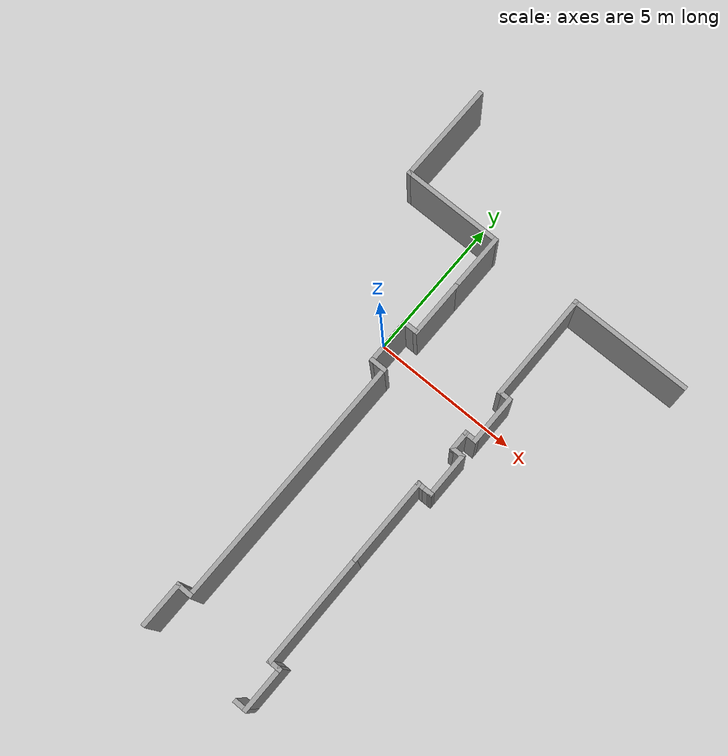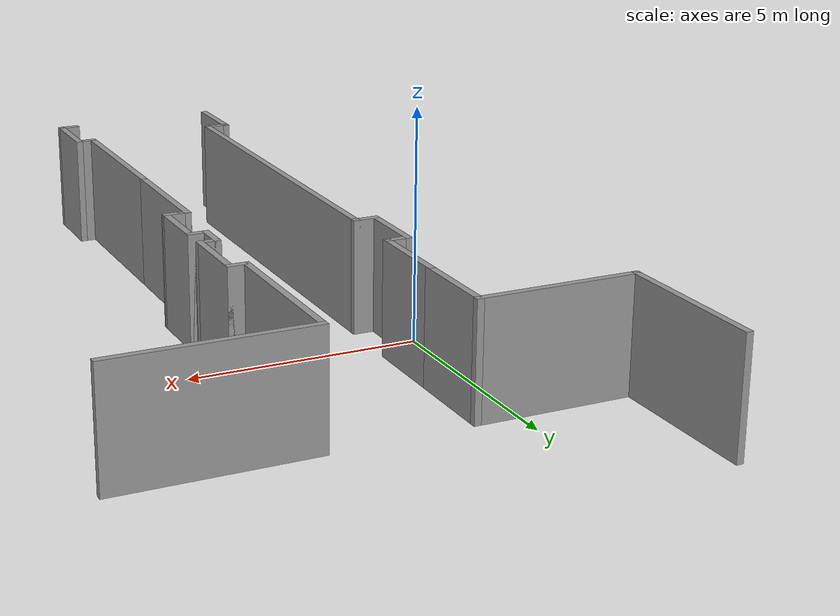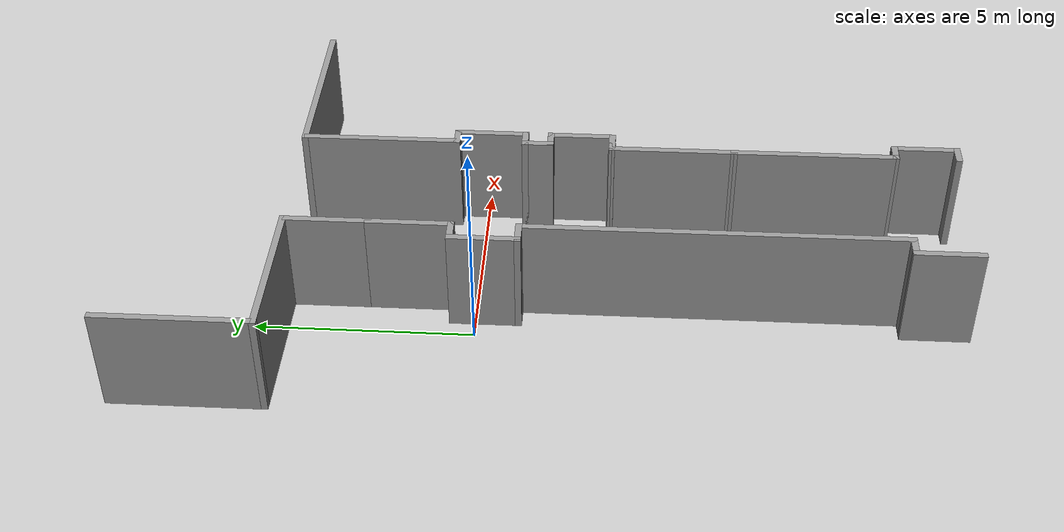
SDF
<sdf version="1.6">
 <model name="volen.world">
  <link name="Wall_126">
   <pose>6.03623 4.29936 0 0 -0 3.14159</pose>
   <visual name="Wall_126_Visual">
    <pose>0 0 1.25 0 -0 0</pose>
    <geometry><box><size>4.25 0.15 2.5</size></box></geometry>
    <material>
     <script><uri>file://media/materials/scripts/gazebo.material</uri><name>Gazebo/Grey</name></script>
     <ambient>1 1 1 1</ambient>
     <diffuse>0.7 0.7 0.7 1</diffuse>
     <specular>0.01 0.01 0.01 1</specular>
     <emissive>0 0 0 1</emissive>
    </material>
   </visual>
   <collision name="Wall_126_Collision">
    <pose>0 0 1.25 0 -0 0</pose>
    <geometry><box><size>4.25 0.15 2.5</size></box></geometry>
    <surface>
     <friction>
      <ode><mu>1</mu><mu2>1</mu2><fdir1>0 0 0</fdir1><slip1>0</slip1><slip2>0</slip2></ode>
      <torsional>
       <coefficient>1</coefficient>
       <patch_radius>0</patch_radius>
       <surface_radius>0</surface_radius>
       <use_patch_radius>1</use_patch_radius>
       <ode><slip>0</slip></ode>
      </torsional>
     </friction>
     <bounce><restitution_coefficient>0</restitution_coefficient><threshold>1e+06</threshold></bounce>
     <contact>
      <collide_without_contact>0</collide_without_contact>
      <collide_without_contact_bitmask>1</collide_without_contact_bitmask>
      <collide_bitmask>1</collide_bitmask>
      <ode>
       <soft_cfm>0</soft_cfm>
       <soft_erp>0.2</soft_erp>
       <kp>1e+13</kp>
       <kd>1</kd>
       <max_vel>0.01</max_vel>
       <min_depth>0</min_depth>
      </ode>
      <bullet>
       <split_impulse>1</split_impulse>
       <split_impulse_penetration_threshold>-0.01</split_impulse_penetration_threshold>
       <soft_cfm>0</soft_cfm>
       <soft_erp>0.2</soft_erp>
       <kp>1e+13</kp>
       <kd>1</kd>
      </bullet>
     </contact>
    </surface>
   </collision>
  </link>
  <link name="Wall_128">
   <pose>3.98623 2.49936 0 0 0 -1.5708</pose>
   <visual name="Wall_128_Visual">
    <pose>0 0 1.25 0 -0 0</pose>
    <geometry><box><size>3.75 0.15 2.5</size></box></geometry>
    <material>
     <script><uri>file://media/materials/scripts/gazebo.material</uri><name>Gazebo/Grey</name></script>
     <ambient>1 1 1 1</ambient>
     <diffuse>0.7 0.7 0.7 1</diffuse>
     <specular>0.01 0.01 0.01 1</specular>
     <emissive>0 0 0 1</emissive>
    </material>
   </visual>
   <collision name="Wall_128_Collision">
    <pose>0 0 1.25 0 -0 0</pose>
    <geometry><box><size>3.75 0.15 2.5</size></box></geometry>
    <surface>
     <friction>
      <ode><mu>1</mu><mu2>1</mu2><fdir1>0 0 0</fdir1><slip1>0</slip1><slip2>0</slip2></ode>
      <torsional>
       <coefficient>1</coefficient>
       <patch_radius>0</patch_radius>
       <surface_radius>0</surface_radius>
       <use_patch_radius>1</use_patch_radius>
       <ode><slip>0</slip></ode>
      </torsional>
     </friction>
     <bounce><restitution_coefficient>0</restitution_coefficient><threshold>1e+06</threshold></bounce>
     <contact>
      <collide_without_contact>0</collide_without_contact>
      <collide_without_contact_bitmask>1</collide_without_contact_bitmask>
      <collide_bitmask>1</collide_bitmask>
      <ode>
       <soft_cfm>0</soft_cfm>
       <soft_erp>0.2</soft_erp>
       <kp>1e+13</kp>
       <kd>1</kd>
       <max_vel>0.01</max_vel>
       <min_depth>0</min_depth>
      </ode>
      <bullet>
       <split_impulse>1</split_impulse>
       <split_impulse_penetration_threshold>-0.01</split_impulse_penetration_threshold>
       <soft_cfm>0</soft_cfm>
       <soft_erp>0.2</soft_erp>
       <kp>1e+13</kp>
       <kd>1</kd>
      </bullet>
     </contact>
    </surface>
   </collision>
  </link>
  <link name="Wall_129">
   <pose>4.16123 0.699362 0 0 -0 0</pose>
   <visual name="Wall_129_Visual">
    <pose>0 0 1.25 0 -0 0</pose>
    <geometry><box><size>0.5 0.15 2.5</size></box></geometry>
    <material>
     <script><uri>file://media/materials/scripts/gazebo.material</uri><name>Gazebo/Grey</name></script>
     <ambient>1 1 1 1</ambient>
     <diffuse>0.7 0.7 0.7 1</diffuse>
     <specular>0.01 0.01 0.01 1</specular>
     <emissive>0 0 0 1</emissive>
    </material>
   </visual>
   <collision name="Wall_129_Collision">
    <pose>0 0 1.25 0 -0 0</pose>
    <geometry><box><size>0.5 0.15 2.5</size></box></geometry>
    <surface>
     <friction>
      <ode><mu>1</mu><mu2>1</mu2><fdir1>0 0 0</fdir1><slip1>0</slip1><slip2>0</slip2></ode>
      <torsional>
       <coefficient>1</coefficient>
       <patch_radius>0</patch_radius>
       <surface_radius>0</surface_radius>
       <use_patch_radius>1</use_patch_radius>
       <ode><slip>0</slip></ode>
      </torsional>
     </friction>
     <bounce><restitution_coefficient>0</restitution_coefficient><threshold>1e+06</threshold></bounce>
     <contact>
      <collide_without_contact>0</collide_without_contact>
      <collide_without_contact_bitmask>1</collide_without_contact_bitmask>
      <collide_bitmask>1</collide_bitmask>
      <ode>
       <soft_cfm>0</soft_cfm>
       <soft_erp>0.2</soft_erp>
       <kp>1e+13</kp>
       <kd>1</kd>
       <max_vel>0.01</max_vel>
       <min_depth>0</min_depth>
      </ode>
      <bullet>
       <split_impulse>1</split_impulse>
       <split_impulse_penetration_threshold>-0.01</split_impulse_penetration_threshold>
       <soft_cfm>0</soft_cfm>
       <soft_erp>0.2</soft_erp>
       <kp>1e+13</kp>
       <kd>1</kd>
      </bullet>
     </contact>
    </surface>
   </collision>
  </link>
  <link name="Wall_130">
   <pose>4.33623 -0.100638 0 0 0 -1.5708</pose>
   <visual name="Wall_130_Visual">
    <pose>0 0 1.25 0 -0 0</pose>
    <geometry><box><size>1.75 0.15 2.5</size></box></geometry>
    <material>
     <script><uri>file://media/materials/scripts/gazebo.material</uri><name>Gazebo/Grey</name></script>
     <ambient>1 1 1 1</ambient>
     <diffuse>0.7 0.7 0.7 1</diffuse>
     <specular>0.01 0.01 0.01 1</specular>
     <emissive>0 0 0 1</emissive>
    </material>
   </visual>
   <collision name="Wall_130_Collision">
    <pose>0 0 1.25 0 -0 0</pose>
    <geometry><box><size>1.75 0.15 2.5</size></box></geometry>
    <surface>
     <friction>
      <ode><mu>1</mu><mu2>1</mu2><fdir1>0 0 0</fdir1><slip1>0</slip1><slip2>0</slip2></ode>
      <torsional>
       <coefficient>1</coefficient>
       <patch_radius>0</patch_radius>
       <surface_radius>0</surface_radius>
       <use_patch_radius>1</use_patch_radius>
       <ode><slip>0</slip></ode>
      </torsional>
     </friction>
     <bounce><restitution_coefficient>0</restitution_coefficient><threshold>1e+06</threshold></bounce>
     <contact>
      <collide_without_contact>0</collide_without_contact>
      <collide_without_contact_bitmask>1</collide_without_contact_bitmask>
      <collide_bitmask>1</collide_bitmask>
      <ode>
       <soft_cfm>0</soft_cfm>
       <soft_erp>0.2</soft_erp>
       <kp>1e+13</kp>
       <kd>1</kd>
       <max_vel>0.01</max_vel>
       <min_depth>0</min_depth>
      </ode>
      <bullet>
       <split_impulse>1</split_impulse>
       <split_impulse_penetration_threshold>-0.01</split_impulse_penetration_threshold>
       <soft_cfm>0</soft_cfm>
       <soft_erp>0.2</soft_erp>
       <kp>1e+13</kp>
       <kd>1</kd>
      </bullet>
     </contact>
    </surface>
   </collision>
  </link>
  <link name="Wall_131">
   <pose>4.16123 -0.900638 0 0 -0 3.14159</pose>
   <visual name="Wall_131_Visual">
    <pose>0 0 1.25 0 -0 0</pose>
    <geometry><box><size>0.5 0.15 2.5</size></box></geometry>
    <material>
     <script><uri>file://media/materials/scripts/gazebo.material</uri><name>Gazebo/Grey</name></script>
     <ambient>1 1 1 1</ambient>
     <diffuse>0.7 0.7 0.7 1</diffuse>
     <specular>0.01 0.01 0.01 1</specular>
     <emissive>0 0 0 1</emissive>
    </material>
   </visual>
   <collision name="Wall_131_Collision">
    <pose>0 0 1.25 0 -0 0</pose>
    <geometry><box><size>0.5 0.15 2.5</size></box></geometry>
    <surface>
     <friction>
      <ode><mu>1</mu><mu2>1</mu2><fdir1>0 0 0</fdir1><slip1>0</slip1><slip2>0</slip2></ode>
      <torsional>
       <coefficient>1</coefficient>
       <patch_radius>0</patch_radius>
       <surface_radius>0</surface_radius>
       <use_patch_radius>1</use_patch_radius>
       <ode><slip>0</slip></ode>
      </torsional>
     </friction>
     <bounce><restitution_coefficient>0</restitution_coefficient><threshold>1e+06</threshold></bounce>
     <contact>
      <collide_without_contact>0</collide_without_contact>
      <collide_without_contact_bitmask>1</collide_without_contact_bitmask>
      <collide_bitmask>1</collide_bitmask>
      <ode>
       <soft_cfm>0</soft_cfm>
       <soft_erp>0.2</soft_erp>
       <kp>1e+13</kp>
       <kd>1</kd>
       <max_vel>0.01</max_vel>
       <min_depth>0</min_depth>
      </ode>
      <bullet>
       <split_impulse>1</split_impulse>
       <split_impulse_penetration_threshold>-0.01</split_impulse_penetration_threshold>
       <soft_cfm>0</soft_cfm>
       <soft_erp>0.2</soft_erp>
       <kp>1e+13</kp>
       <kd>1</kd>
      </bullet>
     </contact>
    </surface>
   </collision>
  </link>
  <link name="Wall_132">
   <pose>3.98623 -1.20064 0 0 0 -1.5708</pose>
   <visual name="Wall_132_Visual">
    <pose>0 0 1.25 0 -0 0</pose>
    <geometry><box><size>0.75 0.15 2.5</size></box></geometry>
    <material>
     <script><uri>file://media/materials/scripts/gazebo.material</uri><name>Gazebo/Grey</name></script>
     <ambient>1 1 1 1</ambient>
     <diffuse>0.7 0.7 0.7 1</diffuse>
     <specular>0.01 0.01 0.01 1</specular>
     <emissive>0 0 0 1</emissive>
    </material>
   </visual>
   <collision name="Wall_132_Collision">
    <pose>0 0 1.25 0 -0 0</pose>
    <geometry><box><size>0.75 0.15 2.5</size></box></geometry>
    <surface>
     <friction>
      <ode><mu>1</mu><mu2>1</mu2><fdir1>0 0 0</fdir1><slip1>0</slip1><slip2>0</slip2></ode>
      <torsional>
       <coefficient>1</coefficient>
       <patch_radius>0</patch_radius>
       <surface_radius>0</surface_radius>
       <use_patch_radius>1</use_patch_radius>
       <ode><slip>0</slip></ode>
      </torsional>
     </friction>
     <bounce><restitution_coefficient>0</restitution_coefficient><threshold>1e+06</threshold></bounce>
     <contact>
      <collide_without_contact>0</collide_without_contact>
      <collide_without_contact_bitmask>1</collide_without_contact_bitmask>
      <collide_bitmask>1</collide_bitmask>
      <ode>
       <soft_cfm>0</soft_cfm>
       <soft_erp>0.2</soft_erp>
       <kp>1e+13</kp>
       <kd>1</kd>
       <max_vel>0.01</max_vel>
       <min_depth>0</min_depth>
      </ode>
      <bullet>
       <split_impulse>1</split_impulse>
       <split_impulse_penetration_threshold>-0.01</split_impulse_penetration_threshold>
       <soft_cfm>0</soft_cfm>
       <soft_erp>0.2</soft_erp>
       <kp>1e+13</kp>
       <kd>1</kd>
      </bullet>
     </contact>
    </surface>
   </collision>
  </link>
  <link name="Wall_133">
   <pose>4.16123 -1.50064 0 0 -0 0</pose>
   <visual name="Wall_133_Visual">
    <pose>0 0 1.25 0 -0 0</pose>
    <geometry><box><size>0.5 0.15 2.5</size></box></geometry>
    <material>
     <script><uri>file://media/materials/scripts/gazebo.material</uri><name>Gazebo/Grey</name></script>
     <ambient>1 1 1 1</ambient>
     <diffuse>0.7 0.7 0.7 1</diffuse>
     <specular>0.01 0.01 0.01 1</specular>
     <emissive>0 0 0 1</emissive>
    </material>
   </visual>
   <collision name="Wall_133_Collision">
    <pose>0 0 1.25 0 -0 0</pose>
    <geometry><box><size>0.5 0.15 2.5</size></box></geometry>
    <surface>
     <friction>
      <ode><mu>1</mu><mu2>1</mu2><fdir1>0 0 0</fdir1><slip1>0</slip1><slip2>0</slip2></ode>
      <torsional>
       <coefficient>1</coefficient>
       <patch_radius>0</patch_radius>
       <surface_radius>0</surface_radius>
       <use_patch_radius>1</use_patch_radius>
       <ode><slip>0</slip></ode>
      </torsional>
     </friction>
     <bounce><restitution_coefficient>0</restitution_coefficient><threshold>1e+06</threshold></bounce>
     <contact>
      <collide_without_contact>0</collide_without_contact>
      <collide_without_contact_bitmask>1</collide_without_contact_bitmask>
      <collide_bitmask>1</collide_bitmask>
      <ode>
       <soft_cfm>0</soft_cfm>
       <soft_erp>0.2</soft_erp>
       <kp>1e+13</kp>
       <kd>1</kd>
       <max_vel>0.01</max_vel>
       <min_depth>0</min_depth>
      </ode>
      <bullet>
       <split_impulse>1</split_impulse>
       <split_impulse_penetration_threshold>-0.01</split_impulse_penetration_threshold>
       <soft_cfm>0</soft_cfm>
       <soft_erp>0.2</soft_erp>
       <kp>1e+13</kp>
       <kd>1</kd>
      </bullet>
     </contact>
    </surface>
   </collision>
  </link>
  <link name="Wall_135">
   <pose>4.33623 -2.22564 0 0 0 -1.5708</pose>
   <visual name="Wall_135_Visual">
    <pose>0 0 1.25 0 -0 0</pose>
    <geometry><box><size>1.6 0.15 2.5</size></box></geometry>
    <material>
     <script><uri>file://media/materials/scripts/gazebo.material</uri><name>Gazebo/Grey</name></script>
     <ambient>1 1 1 1</ambient>
     <diffuse>0.7 0.7 0.7 1</diffuse>
     <specular>0.01 0.01 0.01 1</specular>
     <emissive>0 0 0 1</emissive>
    </material>
   </visual>
   <collision name="Wall_135_Collision">
    <pose>0 0 1.25 0 -0 0</pose>
    <geometry><box><size>1.6 0.15 2.5</size></box></geometry>
    <surface>
     <friction>
      <ode><mu>1</mu><mu2>1</mu2><fdir1>0 0 0</fdir1><slip1>0</slip1><slip2>0</slip2></ode>
      <torsional>
       <coefficient>1</coefficient>
       <patch_radius>0</patch_radius>
       <surface_radius>0</surface_radius>
       <use_patch_radius>1</use_patch_radius>
       <ode><slip>0</slip></ode>
      </torsional>
     </friction>
     <bounce><restitution_coefficient>0</restitution_coefficient><threshold>1e+06</threshold></bounce>
     <contact>
      <collide_without_contact>0</collide_without_contact>
      <collide_without_contact_bitmask>1</collide_without_contact_bitmask>
      <collide_bitmask>1</collide_bitmask>
      <ode>
       <soft_cfm>0</soft_cfm>
       <soft_erp>0.2</soft_erp>
       <kp>1e+13</kp>
       <kd>1</kd>
       <max_vel>0.01</max_vel>
       <min_depth>0</min_depth>
      </ode>
      <bullet>
       <split_impulse>1</split_impulse>
       <split_impulse_penetration_threshold>-0.01</split_impulse_penetration_threshold>
       <soft_cfm>0</soft_cfm>
       <soft_erp>0.2</soft_erp>
       <kp>1e+13</kp>
       <kd>1</kd>
      </bullet>
     </contact>
    </surface>
   </collision>
  </link>
  <link name="Wall_136">
   <pose>4.17098 -2.94965 0 0 -0 3.13564</pose>
   <visual name="Wall_136_Visual">
    <pose>0 0 1.25 0 -0 0</pose>
    <geometry><box><size>0.480681 0.15 2.5</size></box></geometry>
    <material>
     <script><uri>file://media/materials/scripts/gazebo.material</uri><name>Gazebo/Grey</name></script>
     <ambient>1 1 1 1</ambient>
     <diffuse>0.7 0.7 0.7 1</diffuse>
     <specular>0.01 0.01 0.01 1</specular>
     <emissive>0 0 0 1</emissive>
    </material>
   </visual>
   <collision name="Wall_136_Collision">
    <pose>0 0 1.25 0 -0 0</pose>
    <geometry><box><size>0.480681 0.15 2.5</size></box></geometry>
    <surface>
     <friction>
      <ode><mu>1</mu><mu2>1</mu2><fdir1>0 0 0</fdir1><slip1>0</slip1><slip2>0</slip2></ode>
      <torsional>
       <coefficient>1</coefficient>
       <patch_radius>0</patch_radius>
       <surface_radius>0</surface_radius>
       <use_patch_radius>1</use_patch_radius>
       <ode><slip>0</slip></ode>
      </torsional>
     </friction>
     <bounce><restitution_coefficient>0</restitution_coefficient><threshold>1e+06</threshold></bounce>
     <contact>
      <collide_without_contact>0</collide_without_contact>
      <collide_without_contact_bitmask>1</collide_without_contact_bitmask>
      <collide_bitmask>1</collide_bitmask>
      <ode>
       <soft_cfm>0</soft_cfm>
       <soft_erp>0.2</soft_erp>
       <kp>1e+13</kp>
       <kd>1</kd>
       <max_vel>0.01</max_vel>
       <min_depth>0</min_depth>
      </ode>
      <bullet>
       <split_impulse>1</split_impulse>
       <split_impulse_penetration_threshold>-0.01</split_impulse_penetration_threshold>
       <soft_cfm>0</soft_cfm>
       <soft_erp>0.2</soft_erp>
       <kp>1e+13</kp>
       <kd>1</kd>
      </bullet>
     </contact>
    </surface>
   </collision>
  </link>
  <link name="Wall_137">
   <pose>3.94053 -2.94916 0 0 -0 3.04965</pose>
   <visual name="Wall_137_Visual">
    <pose>0 0 1.25 0 -0 0</pose>
    <geometry><box><size>0.280454 0.15 2.5</size></box></geometry>
    <material>
     <script><uri>file://media/materials/scripts/gazebo.material</uri><name>Gazebo/Grey</name></script>
     <ambient>1 1 1 1</ambient>
     <diffuse>0.7 0.7 0.7 1</diffuse>
     <specular>0.01 0.01 0.01 1</specular>
     <emissive>0 0 0 1</emissive>
    </material>
   </visual>
   <collision name="Wall_137_Collision">
    <pose>0 0 1.25 0 -0 0</pose>
    <geometry><box><size>0.280454 0.15 2.5</size></box></geometry>
    <surface>
     <friction>
      <ode><mu>1</mu><mu2>1</mu2><fdir1>0 0 0</fdir1><slip1>0</slip1><slip2>0</slip2></ode>
      <torsional>
       <coefficient>1</coefficient>
       <patch_radius>0</patch_radius>
       <surface_radius>0</surface_radius>
       <use_patch_radius>1</use_patch_radius>
       <ode><slip>0</slip></ode>
      </torsional>
     </friction>
     <bounce><restitution_coefficient>0</restitution_coefficient><threshold>1e+06</threshold></bounce>
     <contact>
      <collide_without_contact>0</collide_without_contact>
      <collide_without_contact_bitmask>1</collide_without_contact_bitmask>
      <collide_bitmask>1</collide_bitmask>
      <ode>
       <soft_cfm>0</soft_cfm>
       <soft_erp>0.2</soft_erp>
       <kp>1e+13</kp>
       <kd>1</kd>
       <max_vel>0.01</max_vel>
       <min_depth>0</min_depth>
      </ode>
      <bullet>
       <split_impulse>1</split_impulse>
       <split_impulse_penetration_threshold>-0.01</split_impulse_penetration_threshold>
       <soft_cfm>0</soft_cfm>
       <soft_erp>0.2</soft_erp>
       <kp>1e+13</kp>
       <kd>1</kd>
      </bullet>
     </contact>
    </surface>
   </collision>
  </link>
  <link name="Wall_138">
   <pose>3.87532 -4.37675 0 0 0 -1.5708</pose>
   <visual name="Wall_138_Visual">
    <pose>0 0 1.25 0 -0 0</pose>
    <geometry><box><size>3 0.15 2.5</size></box></geometry>
    <material>
     <script><uri>file://media/materials/scripts/gazebo.material</uri><name>Gazebo/Grey</name></script>
     <ambient>1 1 1 1</ambient>
     <diffuse>0.7 0.7 0.7 1</diffuse>
     <specular>0.01 0.01 0.01 1</specular>
     <emissive>0 0 0 1</emissive>
    </material>
   </visual>
   <collision name="Wall_138_Collision">
    <pose>0 0 1.25 0 -0 0</pose>
    <geometry><box><size>3 0.15 2.5</size></box></geometry>
    <surface>
     <friction>
      <ode><mu>1</mu><mu2>1</mu2><fdir1>0 0 0</fdir1><slip1>0</slip1><slip2>0</slip2></ode>
      <torsional>
       <coefficient>1</coefficient>
       <patch_radius>0</patch_radius>
       <surface_radius>0</surface_radius>
       <use_patch_radius>1</use_patch_radius>
       <ode><slip>0</slip></ode>
      </torsional>
     </friction>
     <bounce><restitution_coefficient>0</restitution_coefficient><threshold>1e+06</threshold></bounce>
     <contact>
      <collide_without_contact>0</collide_without_contact>
      <collide_without_contact_bitmask>1</collide_without_contact_bitmask>
      <collide_bitmask>1</collide_bitmask>
      <ode>
       <soft_cfm>0</soft_cfm>
       <soft_erp>0.2</soft_erp>
       <kp>1e+13</kp>
       <kd>1</kd>
       <max_vel>0.01</max_vel>
       <min_depth>0</min_depth>
      </ode>
      <bullet>
       <split_impulse>1</split_impulse>
       <split_impulse_penetration_threshold>-0.01</split_impulse_penetration_threshold>
       <soft_cfm>0</soft_cfm>
       <soft_erp>0.2</soft_erp>
       <kp>1e+13</kp>
       <kd>1</kd>
      </bullet>
     </contact>
    </surface>
   </collision>
  </link>
  <link name="Wall_140">
   <pose>3.88078 -7.67189 0 0 0 -1.56789</pose>
   <visual name="Wall_140_Visual">
    <pose>0 0 1.25 0 -0 0</pose>
    <geometry><box><size>3.90751 0.15 2.5</size></box></geometry>
    <material>
     <script><uri>file://media/materials/scripts/gazebo.material</uri><name>Gazebo/Grey</name></script>
     <ambient>1 1 1 1</ambient>
     <diffuse>0.7 0.7 0.7 1</diffuse>
     <specular>0.01 0.01 0.01 1</specular>
     <emissive>0 0 0 1</emissive>
    </material>
   </visual>
   <collision name="Wall_140_Collision">
    <pose>0 0 1.25 0 -0 0</pose>
    <geometry><box><size>3.90751 0.15 2.5</size></box></geometry>
    <surface>
     <friction>
      <ode><mu>1</mu><mu2>1</mu2><fdir1>0 0 0</fdir1><slip1>0</slip1><slip2>0</slip2></ode>
      <torsional>
       <coefficient>1</coefficient>
       <patch_radius>0</patch_radius>
       <surface_radius>0</surface_radius>
       <use_patch_radius>1</use_patch_radius>
       <ode><slip>0</slip></ode>
      </torsional>
     </friction>
     <bounce><restitution_coefficient>0</restitution_coefficient><threshold>1e+06</threshold></bounce>
     <contact>
      <collide_without_contact>0</collide_without_contact>
      <collide_without_contact_bitmask>1</collide_without_contact_bitmask>
      <collide_bitmask>1</collide_bitmask>
      <ode>
       <soft_cfm>0</soft_cfm>
       <soft_erp>0.2</soft_erp>
       <kp>1e+13</kp>
       <kd>1</kd>
       <max_vel>0.01</max_vel>
       <min_depth>0</min_depth>
      </ode>
      <bullet>
       <split_impulse>1</split_impulse>
       <split_impulse_penetration_threshold>-0.01</split_impulse_penetration_threshold>
       <soft_cfm>0</soft_cfm>
       <soft_erp>0.2</soft_erp>
       <kp>1e+13</kp>
       <kd>1</kd>
      </bullet>
     </contact>
    </surface>
   </collision>
  </link>
  <link name="Wall_141">
   <pose>4.06123 -9.55064 0 0 -0 0</pose>
   <visual name="Wall_141_Visual">
    <pose>0 0 1.25 0 -0 0</pose>
    <geometry><box><size>0.5 0.15 2.5</size></box></geometry>
    <material>
     <script><uri>file://media/materials/scripts/gazebo.material</uri><name>Gazebo/Grey</name></script>
     <ambient>1 1 1 1</ambient>
     <diffuse>0.7 0.7 0.7 1</diffuse>
     <specular>0.01 0.01 0.01 1</specular>
     <emissive>0 0 0 1</emissive>
    </material>
   </visual>
   <collision name="Wall_141_Collision">
    <pose>0 0 1.25 0 -0 0</pose>
    <geometry><box><size>0.5 0.15 2.5</size></box></geometry>
    <surface>
     <friction>
      <ode><mu>1</mu><mu2>1</mu2><fdir1>0 0 0</fdir1><slip1>0</slip1><slip2>0</slip2></ode>
      <torsional>
       <coefficient>1</coefficient>
       <patch_radius>0</patch_radius>
       <surface_radius>0</surface_radius>
       <use_patch_radius>1</use_patch_radius>
       <ode><slip>0</slip></ode>
      </torsional>
     </friction>
     <bounce><restitution_coefficient>0</restitution_coefficient><threshold>1e+06</threshold></bounce>
     <contact>
      <collide_without_contact>0</collide_without_contact>
      <collide_without_contact_bitmask>1</collide_without_contact_bitmask>
      <collide_bitmask>1</collide_bitmask>
      <ode>
       <soft_cfm>0</soft_cfm>
       <soft_erp>0.2</soft_erp>
       <kp>1e+13</kp>
       <kd>1</kd>
       <max_vel>0.01</max_vel>
       <min_depth>0</min_depth>
      </ode>
      <bullet>
       <split_impulse>1</split_impulse>
       <split_impulse_penetration_threshold>-0.01</split_impulse_penetration_threshold>
       <soft_cfm>0</soft_cfm>
       <soft_erp>0.2</soft_erp>
       <kp>1e+13</kp>
       <kd>1</kd>
      </bullet>
     </contact>
    </surface>
   </collision>
  </link>
  <link name="Wall_142">
   <pose>4.23623 -10.2756 0 0 0 -1.5708</pose>
   <visual name="Wall_142_Visual">
    <pose>0 0 1.25 0 -0 0</pose>
    <geometry><box><size>1.6 0.15 2.5</size></box></geometry>
    <material>
     <script><uri>file://media/materials/scripts/gazebo.material</uri><name>Gazebo/Grey</name></script>
     <ambient>1 1 1 1</ambient>
     <diffuse>0.7 0.7 0.7 1</diffuse>
     <specular>0.01 0.01 0.01 1</specular>
     <emissive>0 0 0 1</emissive>
    </material>
   </visual>
   <collision name="Wall_142_Collision">
    <pose>0 0 1.25 0 -0 0</pose>
    <geometry><box><size>1.6 0.15 2.5</size></box></geometry>
    <surface>
     <friction>
      <ode><mu>1</mu><mu2>1</mu2><fdir1>0 0 0</fdir1><slip1>0</slip1><slip2>0</slip2></ode>
      <torsional>
       <coefficient>1</coefficient>
       <patch_radius>0</patch_radius>
       <surface_radius>0</surface_radius>
       <use_patch_radius>1</use_patch_radius>
       <ode><slip>0</slip></ode>
      </torsional>
     </friction>
     <bounce><restitution_coefficient>0</restitution_coefficient><threshold>1e+06</threshold></bounce>
     <contact>
      <collide_without_contact>0</collide_without_contact>
      <collide_without_contact_bitmask>1</collide_without_contact_bitmask>
      <collide_bitmask>1</collide_bitmask>
      <ode>
       <soft_cfm>0</soft_cfm>
       <soft_erp>0.2</soft_erp>
       <kp>1e+13</kp>
       <kd>1</kd>
       <max_vel>0.01</max_vel>
       <min_depth>0</min_depth>
      </ode>
      <bullet>
       <split_impulse>1</split_impulse>
       <split_impulse_penetration_threshold>-0.01</split_impulse_penetration_threshold>
       <soft_cfm>0</soft_cfm>
       <soft_erp>0.2</soft_erp>
       <kp>1e+13</kp>
       <kd>1</kd>
      </bullet>
     </contact>
    </surface>
   </collision>
  </link>
  <link name="Wall_145">
   <pose>4.06123 -11.0006 0 0 -0 3.14159</pose>
   <visual name="Wall_145_Visual">
    <pose>0 0 1.25 0 -0 0</pose>
    <geometry><box><size>0.5 0.15 2.5</size></box></geometry>
    <material>
     <script><uri>file://media/materials/scripts/gazebo.material</uri><name>Gazebo/Grey</name></script>
     <ambient>1 1 1 1</ambient>
     <diffuse>0.7 0.7 0.7 1</diffuse>
     <specular>0.01 0.01 0.01 1</specular>
     <emissive>0 0 0 1</emissive>
    </material>
   </visual>
   <collision name="Wall_145_Collision">
    <pose>0 0 1.25 0 -0 0</pose>
    <geometry><box><size>0.5 0.15 2.5</size></box></geometry>
    <surface>
     <friction>
      <ode><mu>1</mu><mu2>1</mu2><fdir1>0 0 0</fdir1><slip1>0</slip1><slip2>0</slip2></ode>
      <torsional>
       <coefficient>1</coefficient>
       <patch_radius>0</patch_radius>
       <surface_radius>0</surface_radius>
       <use_patch_radius>1</use_patch_radius>
       <ode><slip>0</slip></ode>
      </torsional>
     </friction>
     <bounce><restitution_coefficient>0</restitution_coefficient><threshold>1e+06</threshold></bounce>
     <contact>
      <collide_without_contact>0</collide_without_contact>
      <collide_without_contact_bitmask>1</collide_without_contact_bitmask>
      <collide_bitmask>1</collide_bitmask>
      <ode>
       <soft_cfm>0</soft_cfm>
       <soft_erp>0.2</soft_erp>
       <kp>1e+13</kp>
       <kd>1</kd>
       <max_vel>0.01</max_vel>
       <min_depth>0</min_depth>
      </ode>
      <bullet>
       <split_impulse>1</split_impulse>
       <split_impulse_penetration_threshold>-0.01</split_impulse_penetration_threshold>
       <soft_cfm>0</soft_cfm>
       <soft_erp>0.2</soft_erp>
       <kp>1e+13</kp>
       <kd>1</kd>
      </bullet>
     </contact>
    </surface>
   </collision>
  </link>
  <link name="Wall_247">
   <pose>0.44523 -10.3346 0 0 -0 1.5708</pose>
   <visual name="Wall_247_Visual">
    <pose>0 0 1.25 0 -0 0</pose>
    <geometry><box><size>1.6 0.15 2.5</size></box></geometry>
    <material>
     <script><uri>file://media/materials/scripts/gazebo.material</uri><name>Gazebo/Grey</name></script>
     <ambient>1 1 1 1</ambient>
     <diffuse>0.7 0.7 0.7 1</diffuse>
     <specular>0.01 0.01 0.01 1</specular>
     <emissive>0 0 0 1</emissive>
    </material>
   </visual>
   <collision name="Wall_247_Collision">
    <pose>0 0 1.25 0 -0 0</pose>
    <geometry><box><size>1.6 0.15 2.5</size></box></geometry>
    <surface>
     <friction>
      <ode><mu>1</mu><mu2>1</mu2><fdir1>0 0 0</fdir1><slip1>0</slip1><slip2>0</slip2></ode>
      <torsional>
       <coefficient>1</coefficient>
       <patch_radius>0</patch_radius>
       <surface_radius>0</surface_radius>
       <use_patch_radius>1</use_patch_radius>
       <ode><slip>0</slip></ode>
      </torsional>
     </friction>
     <bounce><restitution_coefficient>0</restitution_coefficient><threshold>1e+06</threshold></bounce>
     <contact>
      <collide_without_contact>0</collide_without_contact>
      <collide_without_contact_bitmask>1</collide_without_contact_bitmask>
      <collide_bitmask>1</collide_bitmask>
      <ode>
       <soft_cfm>0</soft_cfm>
       <soft_erp>0.2</soft_erp>
       <kp>1e+13</kp>
       <kd>1</kd>
       <max_vel>0.01</max_vel>
       <min_depth>0</min_depth>
      </ode>
      <bullet>
       <split_impulse>1</split_impulse>
       <split_impulse_penetration_threshold>-0.01</split_impulse_penetration_threshold>
       <soft_cfm>0</soft_cfm>
       <soft_erp>0.2</soft_erp>
       <kp>1e+13</kp>
       <kd>1</kd>
      </bullet>
     </contact>
    </surface>
   </collision>
  </link>
  <link name="Wall_249">
   <pose>0.67023 -9.60964 0 0 -0 0</pose>
   <visual name="Wall_249_Visual">
    <pose>0 0 1.25 0 -0 0</pose>
    <geometry><box><size>0.6 0.15 2.5</size></box></geometry>
    <material>
     <script><uri>file://media/materials/scripts/gazebo.material</uri><name>Gazebo/Grey</name></script>
     <ambient>1 1 1 1</ambient>
     <diffuse>0.7 0.7 0.7 1</diffuse>
     <specular>0.01 0.01 0.01 1</specular>
     <emissive>0 0 0 1</emissive>
    </material>
   </visual>
   <collision name="Wall_249_Collision">
    <pose>0 0 1.25 0 -0 0</pose>
    <geometry><box><size>0.6 0.15 2.5</size></box></geometry>
    <surface>
     <friction>
      <ode><mu>1</mu><mu2>1</mu2><fdir1>0 0 0</fdir1><slip1>0</slip1><slip2>0</slip2></ode>
      <torsional>
       <coefficient>1</coefficient>
       <patch_radius>0</patch_radius>
       <surface_radius>0</surface_radius>
       <use_patch_radius>1</use_patch_radius>
       <ode><slip>0</slip></ode>
      </torsional>
     </friction>
     <bounce><restitution_coefficient>0</restitution_coefficient><threshold>1e+06</threshold></bounce>
     <contact>
      <collide_without_contact>0</collide_without_contact>
      <collide_without_contact_bitmask>1</collide_without_contact_bitmask>
      <collide_bitmask>1</collide_bitmask>
      <ode>
       <soft_cfm>0</soft_cfm>
       <soft_erp>0.2</soft_erp>
       <kp>1e+13</kp>
       <kd>1</kd>
       <max_vel>0.01</max_vel>
       <min_depth>0</min_depth>
      </ode>
      <bullet>
       <split_impulse>1</split_impulse>
       <split_impulse_penetration_threshold>-0.01</split_impulse_penetration_threshold>
       <soft_cfm>0</soft_cfm>
       <soft_erp>0.2</soft_erp>
       <kp>1e+13</kp>
       <kd>1</kd>
      </bullet>
     </contact>
    </surface>
   </collision>
  </link>
  <link name="Wall_252">
   <pose>0.89523 -5.28964 0 0 -0 1.5708</pose>
   <visual name="Wall_252_Visual">
    <pose>0 0 1.25 0 -0 0</pose>
    <geometry><box><size>8.79 0.15 2.5</size></box></geometry>
    <material>
     <script><uri>file://media/materials/scripts/gazebo.material</uri><name>Gazebo/Grey</name></script>
     <ambient>1 1 1 1</ambient>
     <diffuse>0.7 0.7 0.7 1</diffuse>
     <specular>0.01 0.01 0.01 1</specular>
     <emissive>0 0 0 1</emissive>
    </material>
   </visual>
   <collision name="Wall_252_Collision">
    <pose>0 0 1.25 0 -0 0</pose>
    <geometry><box><size>8.79 0.15 2.5</size></box></geometry>
    <surface>
     <friction>
      <ode><mu>1</mu><mu2>1</mu2><fdir1>0 0 0</fdir1><slip1>0</slip1><slip2>0</slip2></ode>
      <torsional>
       <coefficient>1</coefficient>
       <patch_radius>0</patch_radius>
       <surface_radius>0</surface_radius>
       <use_patch_radius>1</use_patch_radius>
       <ode><slip>0</slip></ode>
      </torsional>
     </friction>
     <bounce><restitution_coefficient>0</restitution_coefficient><threshold>1e+06</threshold></bounce>
     <contact>
      <collide_without_contact>0</collide_without_contact>
      <collide_without_contact_bitmask>1</collide_without_contact_bitmask>
      <collide_bitmask>1</collide_bitmask>
      <ode>
       <soft_cfm>0</soft_cfm>
       <soft_erp>0.2</soft_erp>
       <kp>1e+13</kp>
       <kd>1</kd>
       <max_vel>0.01</max_vel>
       <min_depth>0</min_depth>
      </ode>
      <bullet>
       <split_impulse>1</split_impulse>
       <split_impulse_penetration_threshold>-0.01</split_impulse_penetration_threshold>
       <soft_cfm>0</soft_cfm>
       <soft_erp>0.2</soft_erp>
       <kp>1e+13</kp>
       <kd>1</kd>
      </bullet>
     </contact>
    </surface>
   </collision>
  </link>
  <link name="Wall_254">
   <pose>0.67023 -0.969638 0 0 -0 3.14159</pose>
   <visual name="Wall_254_Visual">
    <pose>0 0 1.25 0 -0 0</pose>
    <geometry><box><size>0.6 0.15 2.5</size></box></geometry>
    <material>
     <script><uri>file://media/materials/scripts/gazebo.material</uri><name>Gazebo/Grey</name></script>
     <ambient>1 1 1 1</ambient>
     <diffuse>0.7 0.7 0.7 1</diffuse>
     <specular>0.01 0.01 0.01 1</specular>
     <emissive>0 0 0 1</emissive>
    </material>
   </visual>
   <collision name="Wall_254_Collision">
    <pose>0 0 1.25 0 -0 0</pose>
    <geometry><box><size>0.6 0.15 2.5</size></box></geometry>
    <surface>
     <friction>
      <ode><mu>1</mu><mu2>1</mu2><fdir1>0 0 0</fdir1><slip1>0</slip1><slip2>0</slip2></ode>
      <torsional>
       <coefficient>1</coefficient>
       <patch_radius>0</patch_radius>
       <surface_radius>0</surface_radius>
       <use_patch_radius>1</use_patch_radius>
       <ode><slip>0</slip></ode>
      </torsional>
     </friction>
     <bounce><restitution_coefficient>0</restitution_coefficient><threshold>1e+06</threshold></bounce>
     <contact>
      <collide_without_contact>0</collide_without_contact>
      <collide_without_contact_bitmask>1</collide_without_contact_bitmask>
      <collide_bitmask>1</collide_bitmask>
      <ode>
       <soft_cfm>0</soft_cfm>
       <soft_erp>0.2</soft_erp>
       <kp>1e+13</kp>
       <kd>1</kd>
       <max_vel>0.01</max_vel>
       <min_depth>0</min_depth>
      </ode>
      <bullet>
       <split_impulse>1</split_impulse>
       <split_impulse_penetration_threshold>-0.01</split_impulse_penetration_threshold>
       <soft_cfm>0</soft_cfm>
       <soft_erp>0.2</soft_erp>
       <kp>1e+13</kp>
       <kd>1</kd>
      </bullet>
     </contact>
    </surface>
   </collision>
  </link>
  <link name="Wall_256">
   <pose>0.44523 -0.219638 0 0 -0 1.5708</pose>
   <visual name="Wall_256_Visual">
    <pose>0 0 1.25 0 -0 0</pose>
    <geometry><box><size>1.65 0.15 2.5</size></box></geometry>
    <material>
     <script><uri>file://media/materials/scripts/gazebo.material</uri><name>Gazebo/Grey</name></script>
     <ambient>1 1 1 1</ambient>
     <diffuse>0.7 0.7 0.7 1</diffuse>
     <specular>0.01 0.01 0.01 1</specular>
     <emissive>0 0 0 1</emissive>
    </material>
   </visual>
   <collision name="Wall_256_Collision">
    <pose>0 0 1.25 0 -0 0</pose>
    <geometry><box><size>1.65 0.15 2.5</size></box></geometry>
    <surface>
     <friction>
      <ode><mu>1</mu><mu2>1</mu2><fdir1>0 0 0</fdir1><slip1>0</slip1><slip2>0</slip2></ode>
      <torsional>
       <coefficient>1</coefficient>
       <patch_radius>0</patch_radius>
       <surface_radius>0</surface_radius>
       <use_patch_radius>1</use_patch_radius>
       <ode><slip>0</slip></ode>
      </torsional>
     </friction>
     <bounce><restitution_coefficient>0</restitution_coefficient><threshold>1e+06</threshold></bounce>
     <contact>
      <collide_without_contact>0</collide_without_contact>
      <collide_without_contact_bitmask>1</collide_without_contact_bitmask>
      <collide_bitmask>1</collide_bitmask>
      <ode>
       <soft_cfm>0</soft_cfm>
       <soft_erp>0.2</soft_erp>
       <kp>1e+13</kp>
       <kd>1</kd>
       <max_vel>0.01</max_vel>
       <min_depth>0</min_depth>
      </ode>
      <bullet>
       <split_impulse>1</split_impulse>
       <split_impulse_penetration_threshold>-0.01</split_impulse_penetration_threshold>
       <soft_cfm>0</soft_cfm>
       <soft_erp>0.2</soft_erp>
       <kp>1e+13</kp>
       <kd>1</kd>
      </bullet>
     </contact>
    </surface>
   </collision>
  </link>
  <link name="Wall_258">
   <pose>0.67023 0.530362 0 0 -0 0</pose>
   <visual name="Wall_258_Visual">
    <pose>0 0 1.25 0 -0 0</pose>
    <geometry><box><size>0.6 0.15 2.5</size></box></geometry>
    <material>
     <script><uri>file://media/materials/scripts/gazebo.material</uri><name>Gazebo/Grey</name></script>
     <ambient>1 1 1 1</ambient>
     <diffuse>0.7 0.7 0.7 1</diffuse>
     <specular>0.01 0.01 0.01 1</specular>
     <emissive>0 0 0 1</emissive>
    </material>
   </visual>
   <collision name="Wall_258_Collision">
    <pose>0 0 1.25 0 -0 0</pose>
    <geometry><box><size>0.6 0.15 2.5</size></box></geometry>
    <surface>
     <friction>
      <ode><mu>1</mu><mu2>1</mu2><fdir1>0 0 0</fdir1><slip1>0</slip1><slip2>0</slip2></ode>
      <torsional>
       <coefficient>1</coefficient>
       <patch_radius>0</patch_radius>
       <surface_radius>0</surface_radius>
       <use_patch_radius>1</use_patch_radius>
       <ode><slip>0</slip></ode>
      </torsional>
     </friction>
     <bounce><restitution_coefficient>0</restitution_coefficient><threshold>1e+06</threshold></bounce>
     <contact>
      <collide_without_contact>0</collide_without_contact>
      <collide_without_contact_bitmask>1</collide_without_contact_bitmask>
      <collide_bitmask>1</collide_bitmask>
      <ode>
       <soft_cfm>0</soft_cfm>
       <soft_erp>0.2</soft_erp>
       <kp>1e+13</kp>
       <kd>1</kd>
       <max_vel>0.01</max_vel>
       <min_depth>0</min_depth>
      </ode>
      <bullet>
       <split_impulse>1</split_impulse>
       <split_impulse_penetration_threshold>-0.01</split_impulse_penetration_threshold>
       <soft_cfm>0</soft_cfm>
       <soft_erp>0.2</soft_erp>
       <kp>1e+13</kp>
       <kd>1</kd>
      </bullet>
     </contact>
    </surface>
   </collision>
  </link>
  <link name="Wall_260">
   <pose>0.89523 1.45536 0 0 -0 1.5708</pose>
   <visual name="Wall_260_Visual">
    <pose>0 0 1.25 0 -0 0</pose>
    <geometry><box><size>2 0.15 2.5</size></box></geometry>
    <material>
     <script><uri>file://media/materials/scripts/gazebo.material</uri><name>Gazebo/Grey</name></script>
     <ambient>1 1 1 1</ambient>
     <diffuse>0.7 0.7 0.7 1</diffuse>
     <specular>0.01 0.01 0.01 1</specular>
     <emissive>0 0 0 1</emissive>
    </material>
   </visual>
   <collision name="Wall_260_Collision">
    <pose>0 0 1.25 0 -0 0</pose>
    <geometry><box><size>2 0.15 2.5</size></box></geometry>
    <surface>
     <friction>
      <ode><mu>1</mu><mu2>1</mu2><fdir1>0 0 0</fdir1><slip1>0</slip1><slip2>0</slip2></ode>
      <torsional>
       <coefficient>1</coefficient>
       <patch_radius>0</patch_radius>
       <surface_radius>0</surface_radius>
       <use_patch_radius>1</use_patch_radius>
       <ode><slip>0</slip></ode>
      </torsional>
     </friction>
     <bounce><restitution_coefficient>0</restitution_coefficient><threshold>1e+06</threshold></bounce>
     <contact>
      <collide_without_contact>0</collide_without_contact>
      <collide_without_contact_bitmask>1</collide_without_contact_bitmask>
      <collide_bitmask>1</collide_bitmask>
      <ode>
       <soft_cfm>0</soft_cfm>
       <soft_erp>0.2</soft_erp>
       <kp>1e+13</kp>
       <kd>1</kd>
       <max_vel>0.01</max_vel>
       <min_depth>0</min_depth>
      </ode>
      <bullet>
       <split_impulse>1</split_impulse>
       <split_impulse_penetration_threshold>-0.01</split_impulse_penetration_threshold>
       <soft_cfm>0</soft_cfm>
       <soft_erp>0.2</soft_erp>
       <kp>1e+13</kp>
       <kd>1</kd>
      </bullet>
     </contact>
    </surface>
   </collision>
  </link>
  <link name="Wall_262">
   <pose>0.89523 3.33036 0 0 -0 1.5708</pose>
   <visual name="Wall_262_Visual">
    <pose>0 0 1.25 0 -0 0</pose>
    <geometry><box><size>2.05 0.15 2.5</size></box></geometry>
    <material>
     <script><uri>file://media/materials/scripts/gazebo.material</uri><name>Gazebo/Grey</name></script>
     <ambient>1 1 1 1</ambient>
     <diffuse>0.7 0.7 0.7 1</diffuse>
     <specular>0.01 0.01 0.01 1</specular>
     <emissive>0 0 0 1</emissive>
    </material>
   </visual>
   <collision name="Wall_262_Collision">
    <pose>0 0 1.25 0 -0 0</pose>
    <geometry><box><size>2.05 0.15 2.5</size></box></geometry>
    <surface>
     <friction>
      <ode><mu>1</mu><mu2>1</mu2><fdir1>0 0 0</fdir1><slip1>0</slip1><slip2>0</slip2></ode>
      <torsional>
       <coefficient>1</coefficient>
       <patch_radius>0</patch_radius>
       <surface_radius>0</surface_radius>
       <use_patch_radius>1</use_patch_radius>
       <ode><slip>0</slip></ode>
      </torsional>
     </friction>
     <bounce><restitution_coefficient>0</restitution_coefficient><threshold>1e+06</threshold></bounce>
     <contact>
      <collide_without_contact>0</collide_without_contact>
      <collide_without_contact_bitmask>1</collide_without_contact_bitmask>
      <collide_bitmask>1</collide_bitmask>
      <ode>
       <soft_cfm>0</soft_cfm>
       <soft_erp>0.2</soft_erp>
       <kp>1e+13</kp>
       <kd>1</kd>
       <max_vel>0.01</max_vel>
       <min_depth>0</min_depth>
      </ode>
      <bullet>
       <split_impulse>1</split_impulse>
       <split_impulse_penetration_threshold>-0.01</split_impulse_penetration_threshold>
       <soft_cfm>0</soft_cfm>
       <soft_erp>0.2</soft_erp>
       <kp>1e+13</kp>
       <kd>1</kd>
      </bullet>
     </contact>
    </surface>
   </collision>
  </link>
  <link name="Wall_265">
   <pose>-0.79477 4.28036 0 0 -0 3.14159</pose>
   <visual name="Wall_265_Visual">
    <pose>0 0 1.25 0 -0 0</pose>
    <geometry><box><size>3.53 0.15 2.5</size></box></geometry>
    <material>
     <script><uri>file://media/materials/scripts/gazebo.material</uri><name>Gazebo/Grey</name></script>
     <ambient>1 1 1 1</ambient>
     <diffuse>0.7 0.7 0.7 1</diffuse>
     <specular>0.01 0.01 0.01 1</specular>
     <emissive>0 0 0 1</emissive>
    </material>
   </visual>
   <collision name="Wall_265_Collision">
    <pose>0 0 1.25 0 -0 0</pose>
    <geometry><box><size>3.53 0.15 2.5</size></box></geometry>
    <surface>
     <friction>
      <ode><mu>1</mu><mu2>1</mu2><fdir1>0 0 0</fdir1><slip1>0</slip1><slip2>0</slip2></ode>
      <torsional>
       <coefficient>1</coefficient>
       <patch_radius>0</patch_radius>
       <surface_radius>0</surface_radius>
       <use_patch_radius>1</use_patch_radius>
       <ode><slip>0</slip></ode>
      </torsional>
     </friction>
     <bounce><restitution_coefficient>0</restitution_coefficient><threshold>1e+06</threshold></bounce>
     <contact>
      <collide_without_contact>0</collide_without_contact>
      <collide_without_contact_bitmask>1</collide_without_contact_bitmask>
      <collide_bitmask>1</collide_bitmask>
      <ode>
       <soft_cfm>0</soft_cfm>
       <soft_erp>0.2</soft_erp>
       <kp>1e+13</kp>
       <kd>1</kd>
       <max_vel>0.01</max_vel>
       <min_depth>0</min_depth>
      </ode>
      <bullet>
       <split_impulse>1</split_impulse>
       <split_impulse_penetration_threshold>-0.01</split_impulse_penetration_threshold>
       <soft_cfm>0</soft_cfm>
       <soft_erp>0.2</soft_erp>
       <kp>1e+13</kp>
       <kd>1</kd>
      </bullet>
     </contact>
    </surface>
   </collision>
  </link>
  <link name="Wall_268">
   <pose>-2.48477 5.98036 0 0 -0 1.5708</pose>
   <visual name="Wall_268_Visual">
    <pose>0 0 1.25 0 -0 0</pose>
    <geometry><box><size>3.55 0.15 2.5</size></box></geometry>
    <material>
     <script><uri>file://media/materials/scripts/gazebo.material</uri><name>Gazebo/Grey</name></script>
     <ambient>1 1 1 1</ambient>
     <diffuse>0.7 0.7 0.7 1</diffuse>
     <specular>0.01 0.01 0.01 1</specular>
     <emissive>0 0 0 1</emissive>
    </material>
   </visual>
   <collision name="Wall_268_Collision">
    <pose>0 0 1.25 0 -0 0</pose>
    <geometry><box><size>3.55 0.15 2.5</size></box></geometry>
    <surface>
     <friction>
      <ode><mu>1</mu><mu2>1</mu2><fdir1>0 0 0</fdir1><slip1>0</slip1><slip2>0</slip2></ode>
      <torsional>
       <coefficient>1</coefficient>
       <patch_radius>0</patch_radius>
       <surface_radius>0</surface_radius>
       <use_patch_radius>1</use_patch_radius>
       <ode><slip>0</slip></ode>
      </torsional>
     </friction>
     <bounce><restitution_coefficient>0</restitution_coefficient><threshold>1e+06</threshold></bounce>
     <contact>
      <collide_without_contact>0</collide_without_contact>
      <collide_without_contact_bitmask>1</collide_without_contact_bitmask>
      <collide_bitmask>1</collide_bitmask>
      <ode>
       <soft_cfm>0</soft_cfm>
       <soft_erp>0.2</soft_erp>
       <kp>1e+13</kp>
       <kd>1</kd>
       <max_vel>0.01</max_vel>
       <min_depth>0</min_depth>
      </ode>
      <bullet>
       <split_impulse>1</split_impulse>
       <split_impulse_penetration_threshold>-0.01</split_impulse_penetration_threshold>
       <soft_cfm>0</soft_cfm>
       <soft_erp>0.2</soft_erp>
       <kp>1e+13</kp>
       <kd>1</kd>
      </bullet>
     </contact>
    </surface>
   </collision>
  </link>
  <static>1</static>
 </model>
</sdf>
